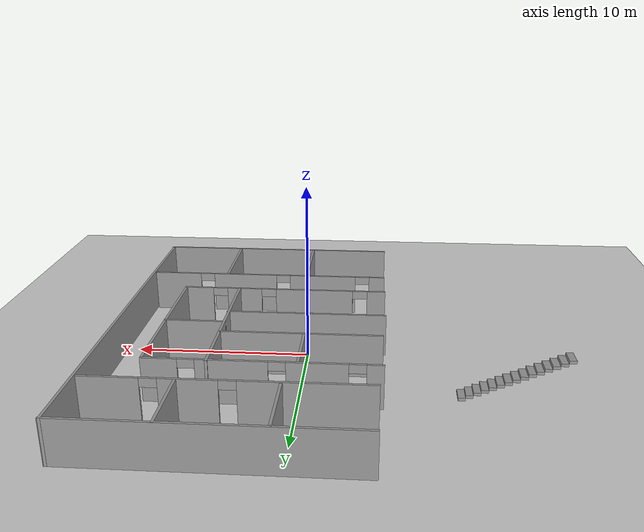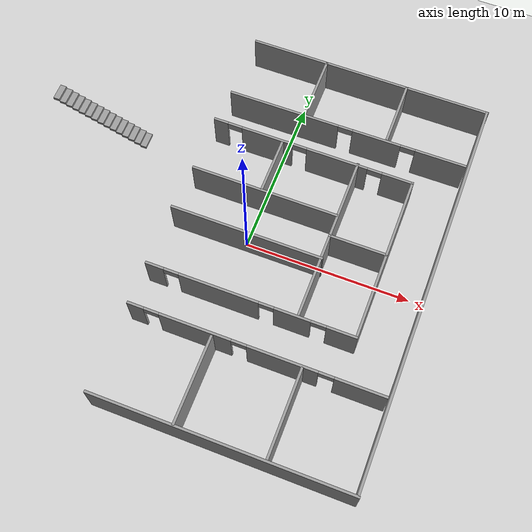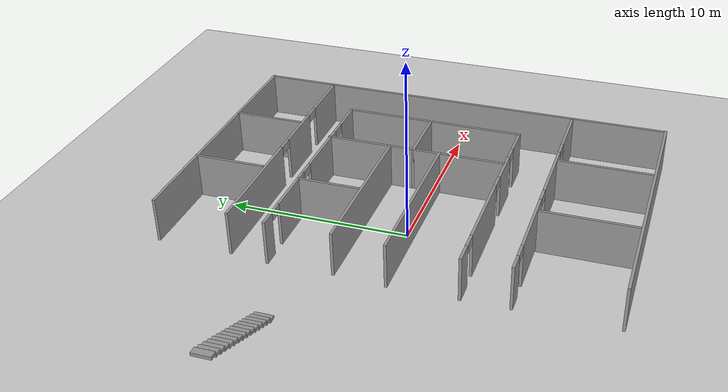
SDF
<sdf version="1.7">
 <world name="IUH">
  <model name="ground_plane">
   <static>1</static>
   <link name="link">
    <collision name="collision">
     <geometry><plane><normal>0 0 1</normal><size>100 100</size></plane></geometry>
     <surface><friction><ode><mu>100</mu><mu2>50</mu2></ode></friction></surface>
    </collision>
    <visual name="visual">
     <cast_shadows>0</cast_shadows>
     <geometry><plane><normal>0 0 1</normal><size>100 100</size></plane></geometry>
     <material>
      <script><uri>file://media/materials/scripts/gazebo.material</uri><name>Gazebo/Grey</name></script>
     </material>
    </visual>
   </link>
  </model>
  <model name="X7-IUH">
   <pose>-1.71813 0.153741 0 0 -0 0</pose>
   <link name="Stairs_3">
    <visual name="Stairs_3_Visual_0">
     <pose>-6.77048 4.25501 0.083333 0 -0 -1.5708</pose>
     <geometry><box><size>1 0.38885 0.166667</size></box></geometry>
     <material>
      <script><uri>file://media/materials/scripts/gazebo.material</uri><name>Gazebo/Grey</name></script>
      <ambient>1 1 1 1</ambient>
     </material>
     <meta><layer>0</layer></meta>
    </visual>
    <collision name="Stairs_3_Collision_0">
     <geometry><box><size>1 0.38885 0.166667</size></box></geometry>
     <pose>-6.77048 4.25501 0.083333 0 -0 -1.5708</pose>
    </collision>
    <visual name="Stairs_3_Visual_1">
     <pose>-7.15933 4.25501 0.25 0 -0 -1.5708</pose>
     <geometry><box><size>1 0.38885 0.166667</size></box></geometry>
     <material>
      <script><uri>file://media/materials/scripts/gazebo.material</uri><name>Gazebo/Grey</name></script>
      <ambient>1 1 1 1</ambient>
     </material>
     <meta><layer>0</layer></meta>
    </visual>
    <collision name="Stairs_3_Collision_1">
     <geometry><box><size>1 0.38885 0.166667</size></box></geometry>
     <pose>-7.15933 4.25501 0.25 0 -0 -1.5708</pose>
    </collision>
    <visual name="Stairs_3_Visual_2">
     <pose>-7.54818 4.25501 0.416667 0 -0 -1.5708</pose>
     <geometry><box><size>1 0.38885 0.166667</size></box></geometry>
     <material>
      <script><uri>file://media/materials/scripts/gazebo.material</uri><name>Gazebo/Grey</name></script>
      <ambient>1 1 1 1</ambient>
     </material>
     <meta><layer>0</layer></meta>
    </visual>
    <collision name="Stairs_3_Collision_2">
     <geometry><box><size>1 0.38885 0.166667</size></box></geometry>
     <pose>-7.54818 4.25501 0.416667 0 -0 -1.5708</pose>
    </collision>
    <visual name="Stairs_3_Visual_3">
     <pose>-7.93703 4.25501 0.583333 0 -0 -1.5708</pose>
     <geometry><box><size>1 0.38885 0.166667</size></box></geometry>
     <material>
      <script><uri>file://media/materials/scripts/gazebo.material</uri><name>Gazebo/Grey</name></script>
      <ambient>1 1 1 1</ambient>
     </material>
     <meta><layer>0</layer></meta>
    </visual>
    <collision name="Stairs_3_Collision_3">
     <geometry><box><size>1 0.38885 0.166667</size></box></geometry>
     <pose>-7.93703 4.25501 0.583333 0 -0 -1.5708</pose>
    </collision>
    <visual name="Stairs_3_Visual_4">
     <pose>-8.32588 4.25501 0.75 0 -0 -1.5708</pose>
     <geometry><box><size>1 0.38885 0.166667</size></box></geometry>
     <material>
      <script><uri>file://media/materials/scripts/gazebo.material</uri><name>Gazebo/Grey</name></script>
      <ambient>1 1 1 1</ambient>
     </material>
     <meta><layer>0</layer></meta>
    </visual>
    <collision name="Stairs_3_Collision_4">
     <geometry><box><size>1 0.38885 0.166667</size></box></geometry>
     <pose>-8.32588 4.25501 0.75 0 -0 -1.5708</pose>
    </collision>
    <visual name="Stairs_3_Visual_5">
     <pose>-8.71473 4.25501 0.916667 0 -0 -1.5708</pose>
     <geometry><box><size>1 0.38885 0.166667</size></box></geometry>
     <material>
      <script><uri>file://media/materials/scripts/gazebo.material</uri><name>Gazebo/Grey</name></script>
      <ambient>1 1 1 1</ambient>
     </material>
     <meta><layer>0</layer></meta>
    </visual>
    <collision name="Stairs_3_Collision_5">
     <geometry><box><size>1 0.38885 0.166667</size></box></geometry>
     <pose>-8.71473 4.25501 0.916667 0 -0 -1.5708</pose>
    </collision>
    <visual name="Stairs_3_Visual_6">
     <pose>-9.10359 4.25501 1.08333 0 -0 -1.5708</pose>
     <geometry><box><size>1 0.38885 0.166667</size></box></geometry>
     <material>
      <script><uri>file://media/materials/scripts/gazebo.material</uri><name>Gazebo/Grey</name></script>
      <ambient>1 1 1 1</ambient>
     </material>
     <meta><layer>0</layer></meta>
    </visual>
    <collision name="Stairs_3_Collision_6">
     <geometry><box><size>1 0.38885 0.166667</size></box></geometry>
     <pose>-9.10359 4.25501 1.08333 0 -0 -1.5708</pose>
    </collision>
    <visual name="Stairs_3_Visual_7">
     <pose>-9.49244 4.25501 1.25 0 -0 -1.5708</pose>
     <geometry><box><size>1 0.38885 0.166667</size></box></geometry>
     <material>
      <script><uri>file://media/materials/scripts/gazebo.material</uri><name>Gazebo/Grey</name></script>
      <ambient>1 1 1 1</ambient>
     </material>
     <meta><layer>0</layer></meta>
    </visual>
    <collision name="Stairs_3_Collision_7">
     <geometry><box><size>1 0.38885 0.166667</size></box></geometry>
     <pose>-9.49244 4.25501 1.25 0 -0 -1.5708</pose>
    </collision>
    <visual name="Stairs_3_Visual_8">
     <pose>-9.88129 4.25501 1.41667 0 -0 -1.5708</pose>
     <geometry><box><size>1 0.38885 0.166667</size></box></geometry>
     <material>
      <script><uri>file://media/materials/scripts/gazebo.material</uri><name>Gazebo/Grey</name></script>
      <ambient>1 1 1 1</ambient>
     </material>
     <meta><layer>0</layer></meta>
    </visual>
    <collision name="Stairs_3_Collision_8">
     <geometry><box><size>1 0.38885 0.166667</size></box></geometry>
     <pose>-9.88129 4.25501 1.41667 0 -0 -1.5708</pose>
    </collision>
    <visual name="Stairs_3_Visual_9">
     <pose>-10.2701 4.25501 1.58333 0 -0 -1.5708</pose>
     <geometry><box><size>1 0.38885 0.166667</size></box></geometry>
     <material>
      <script><uri>file://media/materials/scripts/gazebo.material</uri><name>Gazebo/Grey</name></script>
      <ambient>1 1 1 1</ambient>
     </material>
     <meta><layer>0</layer></meta>
    </visual>
    <collision name="Stairs_3_Collision_9">
     <geometry><box><size>1 0.38885 0.166667</size></box></geometry>
     <pose>-10.2701 4.25501 1.58333 0 -0 -1.5708</pose>
    </collision>
    <visual name="Stairs_3_Visual_10">
     <pose>-10.659 4.25501 1.75 0 -0 -1.5708</pose>
     <geometry><box><size>1 0.38885 0.166667</size></box></geometry>
     <material>
      <script><uri>file://media/materials/scripts/gazebo.material</uri><name>Gazebo/Grey</name></script>
      <ambient>1 1 1 1</ambient>
     </material>
     <meta><layer>0</layer></meta>
    </visual>
    <collision name="Stairs_3_Collision_10">
     <geometry><box><size>1 0.38885 0.166667</size></box></geometry>
     <pose>-10.659 4.25501 1.75 0 -0 -1.5708</pose>
    </collision>
    <visual name="Stairs_3_Visual_11">
     <pose>-11.0478 4.25501 1.91667 0 -0 -1.5708</pose>
     <geometry><box><size>1 0.38885 0.166667</size></box></geometry>
     <material>
      <script><uri>file://media/materials/scripts/gazebo.material</uri><name>Gazebo/Grey</name></script>
      <ambient>1 1 1 1</ambient>
     </material>
     <meta><layer>0</layer></meta>
    </visual>
    <collision name="Stairs_3_Collision_11">
     <geometry><box><size>1 0.38885 0.166667</size></box></geometry>
     <pose>-11.0478 4.25501 1.91667 0 -0 -1.5708</pose>
    </collision>
    <visual name="Stairs_3_Visual_12">
     <pose>-11.4367 4.25501 2.08333 0 -0 -1.5708</pose>
     <geometry><box><size>1 0.38885 0.166667</size></box></geometry>
     <material>
      <script><uri>file://media/materials/scripts/gazebo.material</uri><name>Gazebo/Grey</name></script>
      <ambient>1 1 1 1</ambient>
     </material>
     <meta><layer>0</layer></meta>
    </visual>
    <collision name="Stairs_3_Collision_12">
     <geometry><box><size>1 0.38885 0.166667</size></box></geometry>
     <pose>-11.4367 4.25501 2.08333 0 -0 -1.5708</pose>
    </collision>
    <visual name="Stairs_3_Visual_13">
     <pose>-11.8255 4.25501 2.25 0 -0 -1.5708</pose>
     <geometry><box><size>1 0.38885 0.166667</size></box></geometry>
     <material>
      <script><uri>file://media/materials/scripts/gazebo.material</uri><name>Gazebo/Grey</name></script>
      <ambient>1 1 1 1</ambient>
     </material>
     <meta><layer>0</layer></meta>
    </visual>
    <collision name="Stairs_3_Collision_13">
     <geometry><box><size>1 0.38885 0.166667</size></box></geometry>
     <pose>-11.8255 4.25501 2.25 0 -0 -1.5708</pose>
    </collision>
    <visual name="Stairs_3_Visual_14">
     <pose>-12.2144 4.25501 2.41667 0 -0 -1.5708</pose>
     <geometry><box><size>1 0.38885 0.166667</size></box></geometry>
     <material>
      <script><uri>file://media/materials/scripts/gazebo.material</uri><name>Gazebo/Grey</name></script>
      <ambient>1 1 1 1</ambient>
     </material>
     <meta><layer>0</layer></meta>
    </visual>
    <collision name="Stairs_3_Collision_14">
     <geometry><box><size>1 0.38885 0.166667</size></box></geometry>
     <pose>-12.2144 4.25501 2.41667 0 -0 -1.5708</pose>
    </collision>
   </link>
   <link name="Wall_37">
    <collision name="Wall_37_Collision">
     <geometry><box><size>15.25 0.15 2.5</size></box></geometry>
     <pose>0 0 1.25 0 -0 0</pose>
    </collision>
    <visual name="Wall_37_Visual">
     <pose>0 0 1.25 0 -0 0</pose>
     <geometry><box><size>15.25 0.15 2.5</size></box></geometry>
     <material>
      <script><uri>file://media/materials/scripts/gazebo.material</uri><name>Gazebo/Grey</name></script>
      <ambient>1 1 1 1</ambient>
     </material>
     <meta><layer>0</layer></meta>
    </visual>
    <pose>4.95805 -12.1065 0 0 -0 0</pose>
   </link>
   <link name="Wall_39">
    <pose>4.83305 -6.75651 0 0 -0 0</pose>
    <visual name="Wall_39_Visual_0">
     <pose>-7.00368 0 1.25 0 -0 0</pose>
     <geometry><box><size>0.992648 0.15 2.5</size></box></geometry>
     <material>
      <script><uri>file://media/materials/scripts/gazebo.material</uri><name>Gazebo/Grey</name></script>
      <ambient>1 1 1 1</ambient>
     </material>
     <meta><layer>0</layer></meta>
    </visual>
    <collision name="Wall_39_Collision_0">
     <geometry><box><size>0.992648 0.15 2.5</size></box></geometry>
     <pose>-7.00368 0 1.25 0 -0 0</pose>
    </collision>
    <visual name="Wall_39_Visual_1">
     <pose>-3.48865 0 1.25 0 -0 0</pose>
     <geometry><box><size>4.2374 0.15 2.5</size></box></geometry>
     <material>
      <script><uri>file://media/materials/scripts/gazebo.material</uri><name>Gazebo/Grey</name></script>
      <ambient>1 1 1 1</ambient>
     </material>
     <meta><layer>0</layer></meta>
    </visual>
    <collision name="Wall_39_Collision_1">
     <geometry><box><size>4.2374 0.15 2.5</size></box></geometry>
     <pose>-3.48865 0 1.25 0 -0 0</pose>
    </collision>
    <visual name="Wall_39_Visual_2">
     <pose>1.56908 0 1.25 0 -0 0</pose>
     <geometry><box><size>4.07806 0.15 2.5</size></box></geometry>
     <material>
      <script><uri>file://media/materials/scripts/gazebo.material</uri><name>Gazebo/Grey</name></script>
      <ambient>1 1 1 1</ambient>
     </material>
     <meta><layer>0</layer></meta>
    </visual>
    <collision name="Wall_39_Collision_2">
     <geometry><box><size>4.07806 0.15 2.5</size></box></geometry>
     <pose>1.56908 0 1.25 0 -0 0</pose>
    </collision>
    <visual name="Wall_39_Visual_3">
     <pose>6.00405 0 1.25 0 -0 0</pose>
     <geometry><box><size>2.99189 0.15 2.5</size></box></geometry>
     <material>
      <script><uri>file://media/materials/scripts/gazebo.material</uri><name>Gazebo/Grey</name></script>
      <ambient>1 1 1 1</ambient>
     </material>
     <meta><layer>0</layer></meta>
    </visual>
    <collision name="Wall_39_Collision_3">
     <geometry><box><size>2.99189 0.15 2.5</size></box></geometry>
     <pose>6.00405 0 1.25 0 -0 0</pose>
    </collision>
    <visual name="Wall_39_Visual_4">
     <pose>-6.05735 0 2.25 0 -0 0</pose>
     <geometry><box><size>0.9 0.15 0.5</size></box></geometry>
     <material>
      <script><uri>file://media/materials/scripts/gazebo.material</uri><name>Gazebo/Grey</name></script>
      <ambient>1 1 1 1</ambient>
     </material>
     <meta><layer>0</layer></meta>
    </visual>
    <collision name="Wall_39_Collision_4">
     <geometry><box><size>0.9 0.15 0.5</size></box></geometry>
     <pose>-6.05735 0 2.25 0 -0 0</pose>
    </collision>
    <visual name="Wall_39_Visual_5">
     <pose>-0.919952 0 2.25 0 -0 0</pose>
     <geometry><box><size>0.9 0.15 0.5</size></box></geometry>
     <material>
      <script><uri>file://media/materials/scripts/gazebo.material</uri><name>Gazebo/Grey</name></script>
      <ambient>1 1 1 1</ambient>
     </material>
     <meta><layer>0</layer></meta>
    </visual>
    <collision name="Wall_39_Collision_5">
     <geometry><box><size>0.9 0.15 0.5</size></box></geometry>
     <pose>-0.919952 0 2.25 0 -0 0</pose>
    </collision>
    <visual name="Wall_39_Visual_6">
     <pose>4.05811 0 2.25 0 -0 0</pose>
     <geometry><box><size>0.9 0.15 0.5</size></box></geometry>
     <material>
      <script><uri>file://media/materials/scripts/gazebo.material</uri><name>Gazebo/Grey</name></script>
      <ambient>1 1 1 1</ambient>
     </material>
     <meta><layer>0</layer></meta>
    </visual>
    <collision name="Wall_39_Collision_6">
     <geometry><box><size>0.9 0.15 0.5</size></box></geometry>
     <pose>4.05811 0 2.25 0 -0 0</pose>
    </collision>
   </link>
   <link name="Wall_41">
    <collision name="Wall_41_Collision">
     <geometry><box><size>5.25 0.15 2.5</size></box></geometry>
     <pose>0 0 1.25 0 -0 0</pose>
    </collision>
    <visual name="Wall_41_Visual">
     <pose>0 0 1.25 0 -0 0</pose>
     <geometry><box><size>5.25 0.15 2.5</size></box></geometry>
     <material>
      <script><uri>file://media/materials/scripts/gazebo.material</uri><name>Gazebo/Grey</name></script>
      <ambient>1 1 1 1</ambient>
     </material>
     <meta><layer>0</layer></meta>
    </visual>
    <pose>2.39181 -9.48789 0 0 -0 -1.5708</pose>
   </link>
   <link name="Wall_43">
    <collision name="Wall_43_Collision">
     <geometry><box><size>5.25 0.15 2.5</size></box></geometry>
     <pose>0 0 1.25 0 -0 0</pose>
    </collision>
    <visual name="Wall_43_Visual">
     <pose>0 0 1.25 0 -0 0</pose>
     <geometry><box><size>5.25 0.15 2.5</size></box></geometry>
     <material>
      <script><uri>file://media/materials/scripts/gazebo.material</uri><name>Gazebo/Grey</name></script>
      <ambient>1 1 1 1</ambient>
     </material>
     <meta><layer>0</layer></meta>
    </visual>
    <pose>7.56015 -9.42636 0 0 -0 -1.5708</pose>
   </link>
   <link name="Wall_49">
    <collision name="Wall_49_Collision">
     <geometry><box><size>15.0802 0.15 2.5</size></box></geometry>
     <pose>0 0 1.25 0 -0 0</pose>
    </collision>
    <visual name="Wall_49_Visual">
     <pose>0 0 1.25 0 -0 0</pose>
     <geometry><box><size>15.0802 0.15 2.5</size></box></geometry>
     <material>
      <script><uri>file://media/materials/scripts/gazebo.material</uri><name>Gazebo/Grey</name></script>
      <ambient>1 1 1 1</ambient>
     </material>
     <meta><layer>0</layer></meta>
    </visual>
    <pose>5.03791 12.1062 0 0 -0 0</pose>
   </link>
   <link name="Wall_5">
    <collision name="Wall_5_Collision">
     <geometry><box><size>24.25 0.15 2.5</size></box></geometry>
     <pose>0 0 1.25 0 -0 0</pose>
    </collision>
    <visual name="Wall_5_Visual">
     <pose>0 0 1.25 0 -0 0</pose>
     <geometry><box><size>24.25 0.15 2.5</size></box></geometry>
     <material>
      <script><uri>file://media/materials/scripts/gazebo.material</uri><name>Gazebo/Grey</name></script>
      <ambient>1 1 1 1</ambient>
     </material>
     <meta><layer>0</layer></meta>
    </visual>
    <pose>12.4687 0.056506 0 0 -0 1.5708</pose>
   </link>
   <link name="Wall_51">
    <pose>4.91291 8.04156 0 0 -0 0.00482</pose>
    <visual name="Wall_51_Visual_0">
     <pose>-3.95889 0 1.25 0 -0 0</pose>
     <geometry><box><size>6.91255 0.15 2.5</size></box></geometry>
     <material>
      <script><uri>file://media/materials/scripts/gazebo.material</uri><name>Gazebo/Grey</name></script>
      <ambient>1 1 1 1</ambient>
     </material>
     <meta><layer>0</layer></meta>
    </visual>
    <collision name="Wall_51_Collision_0">
     <geometry><box><size>6.91255 0.15 2.5</size></box></geometry>
     <pose>-3.95889 0 1.25 0 -0 0</pose>
    </collision>
    <visual name="Wall_51_Visual_1">
     <pose>1.89352 0 1.25 0 -0 0</pose>
     <geometry><box><size>2.99227 0.15 2.5</size></box></geometry>
     <material>
      <script><uri>file://media/materials/scripts/gazebo.material</uri><name>Gazebo/Grey</name></script>
      <ambient>1 1 1 1</ambient>
     </material>
     <meta><layer>0</layer></meta>
    </visual>
    <collision name="Wall_51_Collision_1">
     <geometry><box><size>2.99227 0.15 2.5</size></box></geometry>
     <pose>1.89352 0 1.25 0 -0 0</pose>
    </collision>
    <visual name="Wall_51_Visual_2">
     <pose>5.85241 0 1.25 0 -0 0</pose>
     <geometry><box><size>3.1255 0.15 2.5</size></box></geometry>
     <material>
      <script><uri>file://media/materials/scripts/gazebo.material</uri><name>Gazebo/Grey</name></script>
      <ambient>1 1 1 1</ambient>
     </material>
     <meta><layer>0</layer></meta>
    </visual>
    <collision name="Wall_51_Collision_2">
     <geometry><box><size>3.1255 0.15 2.5</size></box></geometry>
     <pose>5.85241 0 1.25 0 -0 0</pose>
    </collision>
    <visual name="Wall_51_Visual_3">
     <pose>-0.052613 0 2.25 0 -0 0</pose>
     <geometry><box><size>0.9 0.15 0.5</size></box></geometry>
     <material>
      <script><uri>file://media/materials/scripts/gazebo.material</uri><name>Gazebo/Grey</name></script>
      <ambient>1 1 1 1</ambient>
     </material>
     <meta><layer>0</layer></meta>
    </visual>
    <collision name="Wall_51_Collision_3">
     <geometry><box><size>0.9 0.15 0.5</size></box></geometry>
     <pose>-0.052613 0 2.25 0 -0 0</pose>
    </collision>
    <visual name="Wall_51_Visual_4">
     <pose>3.83966 0 2.25 0 -0 0</pose>
     <geometry><box><size>0.9 0.15 0.5</size></box></geometry>
     <material>
      <script><uri>file://media/materials/scripts/gazebo.material</uri><name>Gazebo/Grey</name></script>
      <ambient>1 1 1 1</ambient>
     </material>
     <meta><layer>0</layer></meta>
    </visual>
    <collision name="Wall_51_Collision_4">
     <geometry><box><size>0.9 0.15 0.5</size></box></geometry>
     <pose>3.83966 0 2.25 0 -0 0</pose>
    </collision>
   </link>
   <link name="Wall_53">
    <collision name="Wall_53_Collision">
     <geometry><box><size>4 0.15 2.5</size></box></geometry>
     <pose>0 0 1.25 0 -0 0</pose>
    </collision>
    <visual name="Wall_53_Visual">
     <pose>0 0 1.25 0 -0 0</pose>
     <geometry><box><size>4 0.15 2.5</size></box></geometry>
     <material>
      <script><uri>file://media/materials/scripts/gazebo.material</uri><name>Gazebo/Grey</name></script>
      <ambient>1 1 1 1</ambient>
     </material>
     <meta><layer>0</layer></meta>
    </visual>
    <pose>2.24279 10.1434 0 0 -0 1.5708</pose>
   </link>
   <link name="Wall_55">
    <collision name="Wall_55_Collision">
     <geometry><box><size>4 0.15 2.5</size></box></geometry>
     <pose>0 0 1.25 0 -0 0</pose>
    </collision>
    <visual name="Wall_55_Visual">
     <pose>0 0 1.25 0 -0 0</pose>
     <geometry><box><size>4 0.15 2.5</size></box></geometry>
     <material>
      <script><uri>file://media/materials/scripts/gazebo.material</uri><name>Gazebo/Grey</name></script>
      <ambient>1 1 1 1</ambient>
     </material>
     <meta><layer>0</layer></meta>
    </visual>
    <pose>7.40806 10.1434 0 0 -0 1.5708</pose>
   </link>
   <link name="Wall_59">
    <pose>3.53556 -4.21654 0 0 -0 0</pose>
    <visual name="Wall_59_Visual_0">
     <pose>-5.69455 0 1.25 0 -0 0</pose>
     <geometry><box><size>1.1109 0.15 2.5</size></box></geometry>
     <material>
      <script><uri>file://media/materials/scripts/gazebo.material</uri><name>Gazebo/Grey</name></script>
      <ambient>1 1 1 1</ambient>
     </material>
     <meta><layer>0</layer></meta>
    </visual>
    <collision name="Wall_59_Collision_0">
     <geometry><box><size>1.1109 0.15 2.5</size></box></geometry>
     <pose>-5.69455 0 1.25 0 -0 0</pose>
    </collision>
    <visual name="Wall_59_Visual_1">
     <pose>-1.85882 0 1.25 0 -0 0</pose>
     <geometry><box><size>4.76056 0.15 2.5</size></box></geometry>
     <material>
      <script><uri>file://media/materials/scripts/gazebo.material</uri><name>Gazebo/Grey</name></script>
      <ambient>1 1 1 1</ambient>
     </material>
     <meta><layer>0</layer></meta>
    </visual>
    <collision name="Wall_59_Collision_1">
     <geometry><box><size>4.76056 0.15 2.5</size></box></geometry>
     <pose>-1.85882 0 1.25 0 -0 0</pose>
    </collision>
    <visual name="Wall_59_Visual_2">
     <pose>2.49274 0 1.25 0 -0 0</pose>
     <geometry><box><size>2.14255 0.15 2.5</size></box></geometry>
     <material>
      <script><uri>file://media/materials/scripts/gazebo.material</uri><name>Gazebo/Grey</name></script>
      <ambient>1 1 1 1</ambient>
     </material>
     <meta><layer>0</layer></meta>
    </visual>
    <collision name="Wall_59_Collision_2">
     <geometry><box><size>2.14255 0.15 2.5</size></box></geometry>
     <pose>2.49274 0 1.25 0 -0 0</pose>
    </collision>
    <visual name="Wall_59_Visual_3">
     <pose>5.35701 0 1.25 0 -0 0</pose>
     <geometry><box><size>1.78598 0.15 2.5</size></box></geometry>
     <material>
      <script><uri>file://media/materials/scripts/gazebo.material</uri><name>Gazebo/Grey</name></script>
      <ambient>1 1 1 1</ambient>
     </material>
     <meta><layer>0</layer></meta>
    </visual>
    <collision name="Wall_59_Collision_3">
     <geometry><box><size>1.78598 0.15 2.5</size></box></geometry>
     <pose>5.35701 0 1.25 0 -0 0</pose>
    </collision>
    <visual name="Wall_59_Visual_4">
     <pose>-4.6891 0 2.25 0 -0 0</pose>
     <geometry><box><size>0.9 0.15 0.5</size></box></geometry>
     <material>
      <script><uri>file://media/materials/scripts/gazebo.material</uri><name>Gazebo/Grey</name></script>
      <ambient>1 1 1 1</ambient>
     </material>
     <meta><layer>0</layer></meta>
    </visual>
    <collision name="Wall_59_Collision_4">
     <geometry><box><size>0.9 0.15 0.5</size></box></geometry>
     <pose>-4.6891 0 2.25 0 -0 0</pose>
    </collision>
    <visual name="Wall_59_Visual_5">
     <pose>0.971463 0 2.25 0 -0 0</pose>
     <geometry><box><size>0.9 0.15 0.5</size></box></geometry>
     <material>
      <script><uri>file://media/materials/scripts/gazebo.material</uri><name>Gazebo/Grey</name></script>
      <ambient>1 1 1 1</ambient>
     </material>
     <meta><layer>0</layer></meta>
    </visual>
    <collision name="Wall_59_Collision_5">
     <geometry><box><size>0.9 0.15 0.5</size></box></geometry>
     <pose>0.971463 0 2.25 0 -0 0</pose>
    </collision>
    <visual name="Wall_59_Visual_6">
     <pose>4.01402 0 2.25 0 -0 0</pose>
     <geometry><box><size>0.9 0.15 0.5</size></box></geometry>
     <material>
      <script><uri>file://media/materials/scripts/gazebo.material</uri><name>Gazebo/Grey</name></script>
      <ambient>1 1 1 1</ambient>
     </material>
     <meta><layer>0</layer></meta>
    </visual>
    <collision name="Wall_59_Collision_6">
     <geometry><box><size>0.9 0.15 0.5</size></box></geometry>
     <pose>4.01402 0 2.25 0 -0 0</pose>
    </collision>
   </link>
   <link name="Wall_61">
    <pose>3.53556 5.88347 0 0 -0 0</pose>
    <visual name="Wall_61_Visual_0">
     <pose>-5.80069 0 1.25 0 -0 0</pose>
     <geometry><box><size>0.898627 0.15 2.5</size></box></geometry>
     <material>
      <script><uri>file://media/materials/scripts/gazebo.material</uri><name>Gazebo/Grey</name></script>
      <ambient>1 1 1 1</ambient>
     </material>
     <meta><layer>0</layer></meta>
    </visual>
    <collision name="Wall_61_Collision_0">
     <geometry><box><size>0.898627 0.15 2.5</size></box></geometry>
     <pose>-5.80069 0 1.25 0 -0 0</pose>
    </collision>
    <visual name="Wall_61_Visual_1">
     <pose>-2.84942 0 1.25 0 -0 0</pose>
     <geometry><box><size>3.20391 0.15 2.5</size></box></geometry>
     <material>
      <script><uri>file://media/materials/scripts/gazebo.material</uri><name>Gazebo/Grey</name></script>
      <ambient>1 1 1 1</ambient>
     </material>
     <meta><layer>0</layer></meta>
    </visual>
    <collision name="Wall_61_Collision_1">
     <geometry><box><size>3.20391 0.15 2.5</size></box></geometry>
     <pose>-2.84942 0 1.25 0 -0 0</pose>
    </collision>
    <visual name="Wall_61_Visual_2">
     <pose>1.53752 0 1.25 0 -0 0</pose>
     <geometry><box><size>3.76997 0.15 2.5</size></box></geometry>
     <material>
      <script><uri>file://media/materials/scripts/gazebo.material</uri><name>Gazebo/Grey</name></script>
      <ambient>1 1 1 1</ambient>
     </material>
     <meta><layer>0</layer></meta>
    </visual>
    <collision name="Wall_61_Collision_2">
     <geometry><box><size>3.76997 0.15 2.5</size></box></geometry>
     <pose>1.53752 0 1.25 0 -0 0</pose>
    </collision>
    <visual name="Wall_61_Visual_3">
     <pose>5.28625 0 1.25 0 -0 0</pose>
     <geometry><box><size>1.9275 0.15 2.5</size></box></geometry>
     <material>
      <script><uri>file://media/materials/scripts/gazebo.material</uri><name>Gazebo/Grey</name></script>
      <ambient>1 1 1 1</ambient>
     </material>
     <meta><layer>0</layer></meta>
    </visual>
    <collision name="Wall_61_Collision_3">
     <geometry><box><size>1.9275 0.15 2.5</size></box></geometry>
     <pose>5.28625 0 1.25 0 -0 0</pose>
    </collision>
    <visual name="Wall_61_Visual_4">
     <pose>-4.90137 0 2.25 0 -0 0</pose>
     <geometry><box><size>0.9 0.15 0.5</size></box></geometry>
     <material>
      <script><uri>file://media/materials/scripts/gazebo.material</uri><name>Gazebo/Grey</name></script>
      <ambient>1 1 1 1</ambient>
     </material>
     <meta><layer>0</layer></meta>
    </visual>
    <collision name="Wall_61_Collision_4">
     <geometry><box><size>0.9 0.15 0.5</size></box></geometry>
     <pose>-4.90137 0 2.25 0 -0 0</pose>
    </collision>
    <visual name="Wall_61_Visual_5">
     <pose>-0.797464 0 2.25 0 -0 0</pose>
     <geometry><box><size>0.9 0.15 0.5</size></box></geometry>
     <material>
      <script><uri>file://media/materials/scripts/gazebo.material</uri><name>Gazebo/Grey</name></script>
      <ambient>1 1 1 1</ambient>
     </material>
     <meta><layer>0</layer></meta>
    </visual>
    <collision name="Wall_61_Collision_5">
     <geometry><box><size>0.9 0.15 0.5</size></box></geometry>
     <pose>-0.797464 0 2.25 0 -0 0</pose>
    </collision>
    <visual name="Wall_61_Visual_6">
     <pose>3.8725 0 2.25 0 -0 0</pose>
     <geometry><box><size>0.9 0.15 0.5</size></box></geometry>
     <material>
      <script><uri>file://media/materials/scripts/gazebo.material</uri><name>Gazebo/Grey</name></script>
      <ambient>1 1 1 1</ambient>
     </material>
     <meta><layer>0</layer></meta>
    </visual>
    <collision name="Wall_61_Collision_6">
     <geometry><box><size>0.9 0.15 0.5</size></box></geometry>
     <pose>3.8725 0 2.25 0 -0 0</pose>
    </collision>
   </link>
   <link name="Wall_63">
    <collision name="Wall_63_Collision">
     <geometry><box><size>10.25 0.15 2.5</size></box></geometry>
     <pose>0 0 1.25 0 -0 0</pose>
    </collision>
    <visual name="Wall_63_Visual">
     <pose>0 0 1.25 0 -0 0</pose>
     <geometry><box><size>10.25 0.15 2.5</size></box></geometry>
     <material>
      <script><uri>file://media/materials/scripts/gazebo.material</uri><name>Gazebo/Grey</name></script>
      <ambient>1 1 1 1</ambient>
     </material>
     <meta><layer>0</layer></meta>
    </visual>
    <pose>9.71056 0.833465 0 0 -0 1.5708</pose>
   </link>
   <link name="Wall_65">
    <collision name="Wall_65_Collision">
     <geometry><box><size>9.25 0.15 2.5</size></box></geometry>
     <pose>0 0 1.25 0 -0 0</pose>
    </collision>
    <visual name="Wall_65_Visual">
     <pose>0 0 1.25 0 -0 0</pose>
     <geometry><box><size>9.25 0.15 2.5</size></box></geometry>
     <material>
      <script><uri>file://media/materials/scripts/gazebo.material</uri><name>Gazebo/Grey</name></script>
      <ambient>1 1 1 1</ambient>
     </material>
     <meta><layer>0</layer></meta>
    </visual>
    <pose>1.8398 -0.48467 0 0 -0 0</pose>
   </link>
   <link name="Wall_67">
    <collision name="Wall_67_Collision">
     <geometry><box><size>10.25 0.15 2.5</size></box></geometry>
     <pose>0 0 1.25 0 -0 0</pose>
    </collision>
    <visual name="Wall_67_Visual">
     <pose>0 0 1.25 0 -0 0</pose>
     <geometry><box><size>10.25 0.15 2.5</size></box></geometry>
     <material>
      <script><uri>file://media/materials/scripts/gazebo.material</uri><name>Gazebo/Grey</name></script>
      <ambient>1 1 1 1</ambient>
     </material>
     <meta><layer>0</layer></meta>
    </visual>
    <pose>6.3467 0.885963 0 0 -0 1.5708</pose>
   </link>
   <link name="Wall_69">
    <collision name="Wall_69_Collision">
     <geometry><box><size>9 0.15 2.5</size></box></geometry>
     <pose>0 0 1.25 0 -0 0</pose>
    </collision>
    <visual name="Wall_69_Visual">
     <pose>0 0 1.25 0 -0 0</pose>
     <geometry><box><size>9 0.15 2.5</size></box></geometry>
     <material>
      <script><uri>file://media/materials/scripts/gazebo.material</uri><name>Gazebo/Grey</name></script>
      <ambient>1 1 1 1</ambient>
     </material>
     <meta><layer>0</layer></meta>
    </visual>
    <pose>1.85631 2.34561 0 0 -0 0</pose>
   </link>
   <link name="Wall_71">
    <collision name="Wall_71_Collision">
     <geometry><box><size>3.5 0.15 2.5</size></box></geometry>
     <pose>0 0 1.25 0 -0 0</pose>
    </collision>
    <visual name="Wall_71_Visual">
     <pose>0 0 1.25 0 -0 0</pose>
     <geometry><box><size>3.5 0.15 2.5</size></box></geometry>
     <material>
      <script><uri>file://media/materials/scripts/gazebo.material</uri><name>Gazebo/Grey</name></script>
      <ambient>1 1 1 1</ambient>
     </material>
     <meta><layer>0</layer></meta>
    </visual>
    <pose>8.0217 1.00123 0 0 -0 0</pose>
   </link>
   <link name="Wall_73">
    <collision name="Wall_73_Collision">
     <geometry><box><size>3.5 0.15 2.5</size></box></geometry>
     <pose>0 0 1.25 0 -0 0</pose>
    </collision>
    <visual name="Wall_73_Visual">
     <pose>0 0 1.25 0 -0 0</pose>
     <geometry><box><size>3.5 0.15 2.5</size></box></geometry>
     <material>
      <script><uri>file://media/materials/scripts/gazebo.material</uri><name>Gazebo/Grey</name></script>
      <ambient>1 1 1 1</ambient>
     </material>
     <meta><layer>0</layer></meta>
    </visual>
    <pose>1.67674 4.1244 0 0 -0 1.5708</pose>
   </link>
   <static>1</static>
  </model>
 </world>
</sdf>
